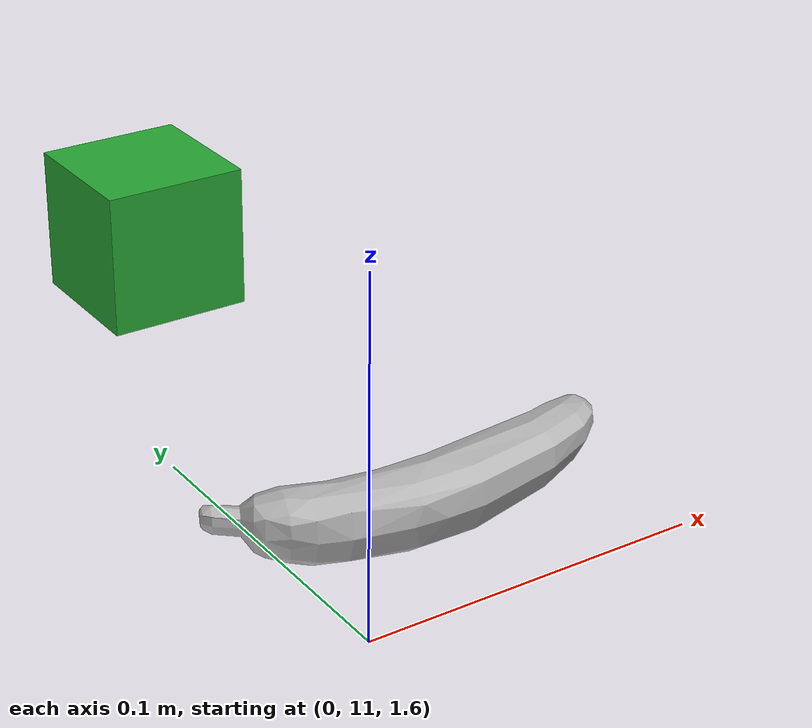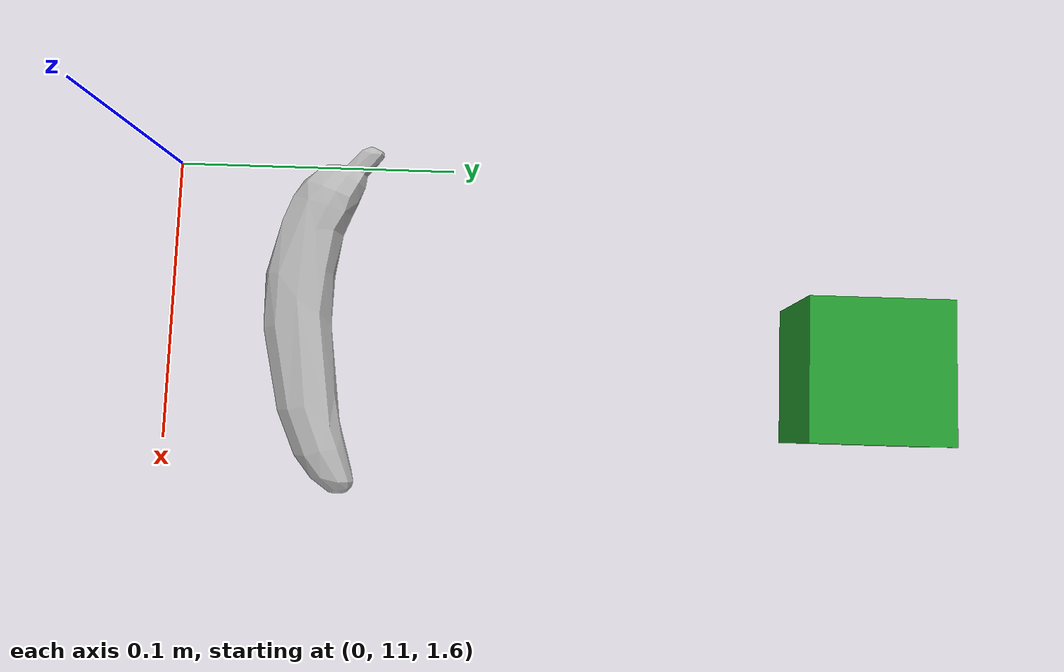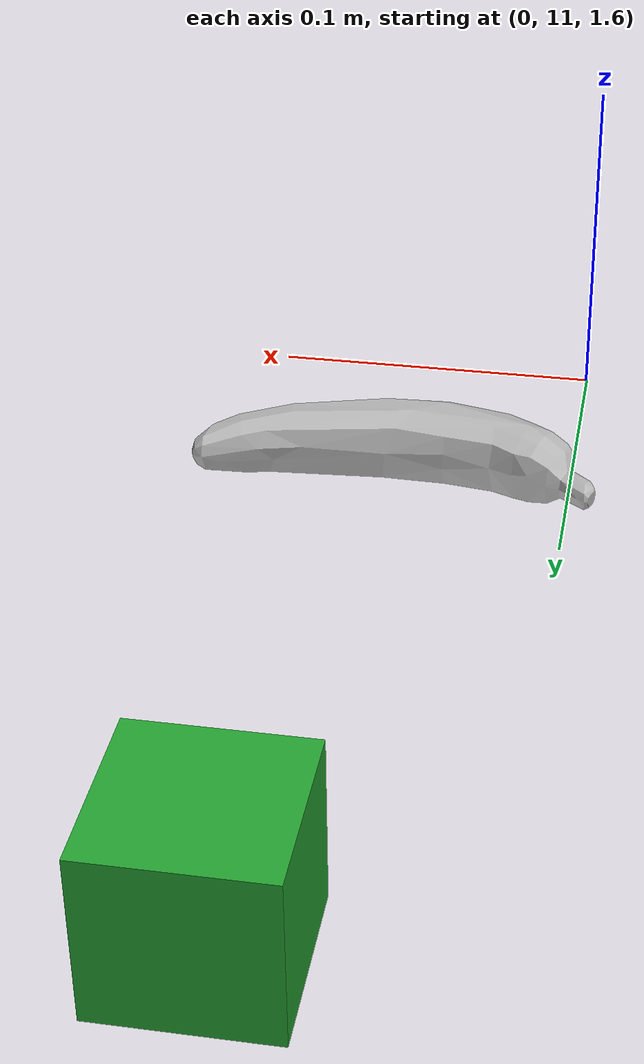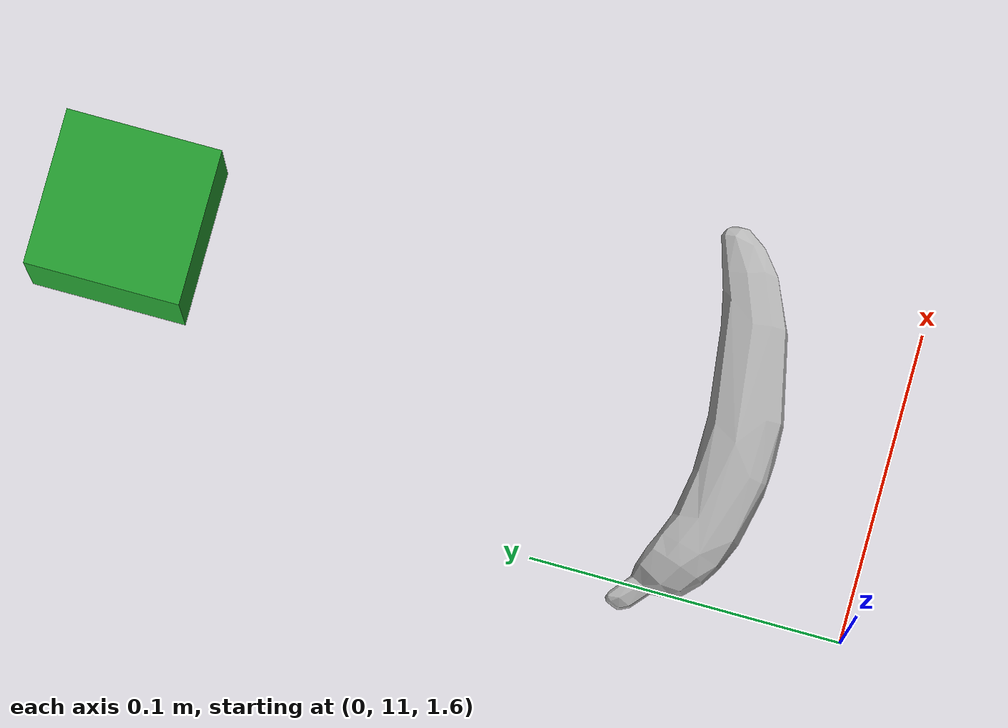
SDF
<?xml version="1.0"?>
<sdf version='1.7'>
  <world name='omtp_world'>

    <light name='sun' type='directional'>
      <cast_shadows>1</cast_shadows>
      <pose>0 0 10 0 -0 0</pose>
      <diffuse>0.8 0.8 0.8 1</diffuse>
      <specular>0.2 0.2 0.2 1</specular>
      <attenuation>
        <range>1000</range>
        <constant>0.9</constant>
        <linear>0.01</linear>
        <quadratic>0.001</quadratic>
      </attenuation>
      <direction>-0.5 0.1 -0.9</direction>
      <spot>
        <inner_angle>0</inner_angle>
        <outer_angle>0</outer_angle>
        <falloff>0</falloff>
      </spot>
    </light>

    <model name='ground_plane'>
      <static>1</static>
      <link name='link'>
        <collision name='collision'>

          <geometry>
            <plane>
              <normal>0 0 1</normal>
              <size>100 100</size>
            </plane>
          </geometry>

          <surface>

            <bounce>
            </bounce>

            <friction>
              <ode>
                <mu>100</mu>
                <mu2>50</mu2>
              </ode>
            </friction>

            <contact>
              <collide_bitmask>65535</collide_bitmask>
              <ode/>
            </contact>

          </surface>

          <max_contacts>10</max_contacts>

        </collision>

        <visual name='visual'>
          <cast_shadows>0</cast_shadows>
          <geometry>
            <plane>
              <normal>0 0 1</normal>
              <size>100 100</size>
            </plane>
          </geometry>
          <material>
            <script>
              <uri>file://media/materials/scripts/gazebo.material</uri>
              <name>Gazebo/Grey</name>
            </script>
          </material>
        </visual>
        <self_collide>0</self_collide>
        <enable_wind>0</enable_wind>
        <kinematic>0</kinematic>
      </link>
    </model>

    <physics type='ode'>
      <gravity>0.000000 0.000000 -9.810000</gravity>
      <max_step_size>0.001</max_step_size>
      <real_time_factor>1</real_time_factor>
      <real_time_update_rate>1000</real_time_update_rate>
    </physics>

    <scene>
      <ambient>0.4 0.4 0.4 1</ambient>
      <background>0.7 0.7 0.7 1</background>
      <shadows>1</shadows>
    </scene>

    <!-- Box -->
    <model name='box_01'>
      <pose>0.07 11.25 1.60 0 0 0</pose>
      <link name='link'>
        <inertial>
          <mass>0.1</mass>
          <inertia>
            <ixx>0.00004166667</ixx>
            <ixy>0</ixy>
            <ixz>0</ixz>
            <iyy>0.00004166667</iyy>
            <iyz>0</iyz>
            <izz>0.00004166667</izz>
          </inertia>
          <pose>0 0 0 0 -0 0</pose>
        </inertial>

        <collision name='collision'>

          <geometry>
            <box>
              <size>0.05 0.05 0.05</size>
            </box>
          </geometry>

          <max_contacts>10</max_contacts>

          <surface>

            <contact>
              <ode>
                <max_vel>5.0</max_vel>
                <min_depth>0.001</min_depth>                <!-- meter -->
                <kp>10000</kp>                <!-- Dynamically 'stiffness'-equivalent coefficient for contact joints -->
                <kd>0</kd>                <!-- Dynamically 'damping'-equivalent coefficient for contact joints -->
              </ode>
            </contact>

            <bounce>
              <restitution_coefficient>0.5</restitution_coefficient>              <!-- "max_vel" must be higher than 0.0 -->
              <threshold>0.01</threshold>
            </bounce>

            <friction>
              <ode>
                <mu>0.95</mu>
                <mu2>0.95</mu2>
              </ode>
            </friction>

          </surface>

        </collision>

        <visual name='visual'>
          <geometry>
            <box>
              <size>0.05 0.05 0.05</size>
            </box>
          </geometry>
          <material>
            <script>
              <name>Gazebo/Green</name>
              <uri>file://media/materials/scripts/gazebo.material</uri>
            </script>
          </material>
        </visual>
        <self_collide>0</self_collide>
        <enable_wind>0</enable_wind>
        <kinematic>0</kinematic>
      </link>
    </model>

    <!-- Banana -->
    <include>
      <uri>model://banana</uri>
      <pose> 0.06  11.05  1.6 0 0 0</pose>
    </include>

    <gui fullscreen='0'>
      <camera name='user_camera'>
        <pose>0.85 -1.25 1.1 0 0.4 2.2</pose>
        <view_controller>orbit</view_controller>
        <projection_type>perspective</projection_type>
      </camera>
    </gui>

    <!-- Logical camera -->

  </world>
</sdf>

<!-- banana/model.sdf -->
<sdf version="1.6">
    <model name="Banana">
        <static>false</static>
        <link name="link">
            <inertial>
                <mass>0.118</mass>
                <inertia>
                    <ixx>0.00013585</ixx>
                    <ixy>0</ixy>
                    <ixz>0</ixz>
                    <iyy>0.00013585</iyy>
                    <iyz>0</iyz>
                    <izz>0.00001227</izz>
                </inertia>
            </inertial>

            <collision name="collision">
                <pose>0 0 0 0 0 1.5708</pose>
                <geometry>
                    <mesh>
                        <uri>meshes/Banana.dae</uri>
                    </mesh>
                </geometry>
            </collision>
            <visual name="visual">
                <pose>0 0 0 0 0 1.5708</pose>
                <geometry>
                    <mesh>
                        <uri>meshes/Banana.dae</uri>
                    </mesh>
                </geometry>
            </visual>
        </link>
    </model>
</sdf>
